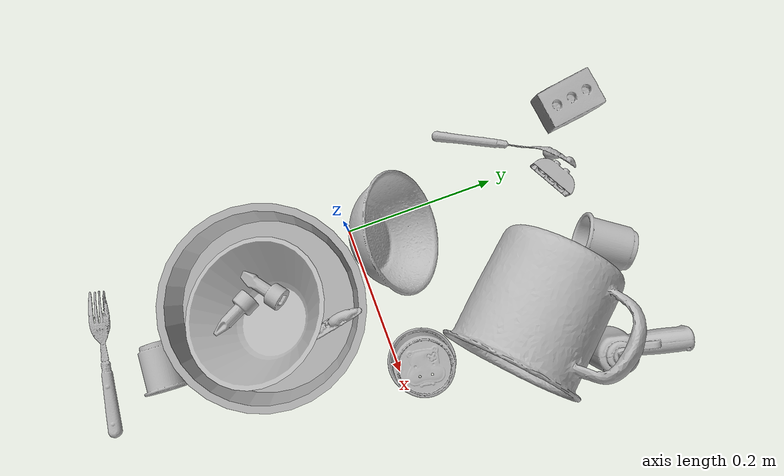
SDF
<sdf version="1.4">
  <world name="default">
    <light name="light1" type="point">
      <pose>0 0 1 0 0 0</pose>
      <diffuse>3 3 3 1</diffuse>
      <specular>3 3 3 1</specular>
    </light>
    <light name="light2" type="point">
      <pose>0 0.5 2 0 0 0</pose>
      <diffuse>1 1 1 1</diffuse>
      <specular>1 1 1 1</specular>
    </light>
    <light name="light3" type="point">
      <pose>0 0.5 2 0 0 0</pose>
      <diffuse>3 3 3 1</diffuse>
      <specular>3 3 3 1</specular>
    </light>
    <scene>
      <ambient>0.7 0.7 0.7</ambient>
    </scene>
    <model name="plate1">
      <link name="link_plate1">
        <collision name="default">
          <geometry>
            <mesh>
              <uri>model://pan_tefal/collision_meshes/collision.obj</uri>
              <scale>1.0 1.0 1.0</scale>
            </mesh>
          </geometry>
          <surface>
            <friction>
              <ode>
                <mu>0.5</mu>
                <mu2>0.5</mu2>
              </ode>
            </friction>
          <contact>
        <ode>
            <max_vel>0</max_vel>
            <min_depth>0.0001</min_depth>
            <kp>1e8</kp>
        </ode>
    </contact></surface>
        </collision>
        <visual name="default">
          <geometry>
            <mesh>
              <uri>model://pan_tefal/visual_meshes/visual.dae</uri>
              <scale>1.0 1.0 1.0</scale>
            </mesh>
          </geometry>
        </visual>
        <inertial>
          <mass>1.356081485748291</mass>
          <pose>-0.00018001878925133497 3.2792810088722035e-05 -0.008514934219419956 0.000819032333381865 -0.0003301471985614655 -0.33185384828338066</pose>
          <inertia>
            <ixx>0.009360965</ixx>
            <iyy>0.009421317</iyy>
            <izz>0.017231734</izz>
            <ixy>0</ixy>
            <ixz>0</ixz>
            <iyz>0</iyz>
          </inertia>
        </inertial>
      </link>
      <pose>0.05797726288437843 -0.13571830093860626 0.038049980998039246 -1.815935901970087e-06 -3.4419227883449926e-07 -1.0961578878169909</pose>
    </model>
    <model name="cup1">
      <link name="link_cup1">
        <collision name="default">
          <geometry>
            <mesh>
              <uri>model://mug/collision_meshes/collision.obj</uri>
              <scale>2.0 2.0 2.0</scale>
            </mesh>
          </geometry>
          <surface>
            <friction>
              <ode>
                <mu>0.5</mu>
                <mu2>0.5</mu2>
              </ode>
            </friction>
          <contact>
        <ode>
            <max_vel>0</max_vel>
            <min_depth>0.0001</min_depth>
            <kp>1e8</kp>
        </ode>
    </contact></surface>
        </collision>
        <visual name="default">
          <geometry>
            <mesh>
              <uri>model://mug/visual_meshes/visual.dae</uri>
              <scale>2.0 2.0 2.0</scale>
            </mesh>
          </geometry>
        </visual>
        <inertial>
          <mass>1.425228476524353</mass>
          <pose>0.019143342971801758 0.0016286519821733236 -0.021894657984375954 -0.12983169455958588 0.08737743422724535 0.05507285753370488</pose>
          <inertia>
            <ixx>0.005662833</ixx>
            <iyy>0.0063250507</iyy>
            <izz>0.0073150056</izz>
            <ixy>0</ixy>
            <ixz>0</ixz>
            <iyz>0</iyz>
          </inertia>
        </inertial>
      </link>
      <pose>0.18804103136062622 0.20158690214157104 0.10355532169342041 -1.46324186858892 0.6855797015070378 -2.330469369040726</pose>
    </model>
    <model name="silverware1">
      <link name="link_silverware1">
        <collision name="default">
          <geometry>
            <mesh>
              <uri>model://spoon/collision_meshes/collision.obj</uri>
              <scale>1.0 1.0 1.0</scale>
            </mesh>
          </geometry>
          <surface>
            <friction>
              <ode>
                <mu>0.5</mu>
                <mu2>0.5</mu2>
              </ode>
            </friction>
          <contact>
        <ode>
            <max_vel>0</max_vel>
            <min_depth>0.0001</min_depth>
            <kp>1e8</kp>
        </ode>
    </contact></surface>
        </collision>
        <visual name="default">
          <geometry>
            <mesh>
              <uri>model://spoon/visual_meshes/visual.dae</uri>
              <scale>1.0 1.0 1.0</scale>
            </mesh>
          </geometry>
        </visual>
        <inertial>
          <mass>0.031423501670360565</mass>
          <pose>-0.005526318680495024 -0.0016034176805987954 -0.000727165665011853 0.035217765619004186 -0.03906586018731898 0.006150610672177042</pose>
          <inertia>
            <ixx>1.7478262e-06</ixx>
            <iyy>0.0001195654</iyy>
            <izz>0.000120427336</izz>
            <ixy>0</ixy>
            <ixz>0</ixz>
            <iyz>0</iyz>
          </inertia>
        </inertial>
      </link>
      <pose>-0.03472175821661949 0.23376286029815674 0.01775543764233589 1.8116189498970898 -0.07323591437370909 1.0873149706880034</pose>
    </model>
    <model name="silverware2">
      <link name="link_silverware2">
        <collision name="default">
          <geometry>
            <mesh>
              <uri>model://fork/collision_meshes/collision.obj</uri>
              <scale>1.0 1.0 1.0</scale>
            </mesh>
          </geometry>
          <surface>
            <friction>
              <ode>
                <mu>0.5</mu>
                <mu2>0.5</mu2>
              </ode>
            </friction>
          <contact>
        <ode>
            <max_vel>0</max_vel>
            <min_depth>0.0001</min_depth>
            <kp>1e8</kp>
        </ode>
    </contact></surface>
        </collision>
        <visual name="default">
          <geometry>
            <mesh>
              <uri>model://fork/visual_meshes/visual.dae</uri>
              <scale>1.0 1.0 1.0</scale>
            </mesh>
          </geometry>
        </visual>
        <inertial>
          <mass>0.02368462271988392</mass>
          <pose>-0.02957003191113472 0.00046588238910771906 0.00032188621116802096 -0.013550757689210725 -0.010977831639922976 0.014453892765665301</pose>
          <inertia>
            <ixx>8.3028004e-07</ixx>
            <iyy>6.183376e-05</iyy>
            <izz>6.220513e-05</izz>
            <ixy>0</ixy>
            <ixz>0</ixz>
            <iyz>0</iyz>
          </inertia>
        </inertial>
      </link>
      <pose>0.05668359994888306 -0.3657918870449066 0.007446601055562496 -3.0634995603240314 0.002835968791694201 2.954797428260109</pose>
    </model>
    <model name="silverware3">
      <link name="link_silverware3">
        <collision name="default">
          <geometry>
            <mesh>
              <uri>model://knife/collision_meshes/collision.obj</uri>
              <scale>1.0 1.0 1.0</scale>
            </mesh>
          </geometry>
          <surface>
            <friction>
              <ode>
                <mu>0.5</mu>
                <mu2>0.5</mu2>
              </ode>
            </friction>
          <contact>
        <ode>
            <max_vel>0</max_vel>
            <min_depth>0.0001</min_depth>
            <kp>1e8</kp>
        </ode>
    </contact></surface>
        </collision>
        <visual name="default">
          <geometry>
            <mesh>
              <uri>model://knife/visual_meshes/visual.dae</uri>
              <scale>1.0 1.0 1.0</scale>
            </mesh>
          </geometry>
        </visual>
        <inertial>
          <mass>0.023530498147010803</mass>
          <pose>-0.023785250261425972 0.0015275124460458755 5.062020863988437e-05 0.07305757972864607 0.01724841573343299 -0.007409825279630946</pose>
          <inertia>
            <ixx>6.678909e-07</ixx>
            <iyy>9.040038e-05</iyy>
            <izz>9.0615475e-05</izz>
            <ixy>0</ixy>
            <ixz>0</ixz>
            <iyz>0</iyz>
          </inertia>
        </inertial>
      </link>
      <pose>0.11870963871479034 -0.11801904439926147 0.04582400619983673 2.603979397325431 -0.31365880083863884 1.764489744866924</pose>
    </model>
    <model name="cup3">
      <link name="link_cup3">
        <collision name="default">
          <geometry>
            <mesh>
              <uri>model://b_cups/collision_meshes/collision.obj</uri>
              <scale>1.0 1.0 1.0</scale>
            </mesh>
          </geometry>
          <surface>
            <friction>
              <ode>
                <mu>0.5</mu>
                <mu2>0.5</mu2>
              </ode>
            </friction>
          <contact>
        <ode>
            <max_vel>0</max_vel>
            <min_depth>0.0001</min_depth>
            <kp>1e8</kp>
        </ode>
    </contact></surface>
        </collision>
        <visual name="default">
          <geometry>
            <mesh>
              <uri>model://b_cups/visual_meshes/visual.dae</uri>
              <scale>1.0 1.0 1.0</scale>
            </mesh>
          </geometry>
        </visual>
        <inertial>
          <mass>0.033049143850803375</mass>
          <pose>0.0005182002205401659 0.001805859967134893 -0.0013381808530539274 0.11356265792291019 0.03872585472979472 -0.3457023826899558</pose>
          <inertia>
            <ixx>2.1632983e-05</ixx>
            <iyy>2.1222275e-05</iyy>
            <izz>1.8203747e-05</izz>
            <ixy>0</ixy>
            <ixz>0</ixz>
            <iyz>0</iyz>
          </inertia>
        </inertial>
      </link>
      <pose>0.08507277816534042 -0.29067760705947876 0.027723899111151695 -1.4073591592912982 0.9737589609919403 -1.4783872803714515</pose>
    </model>
    <model name="cup4">
      <link name="link_cup4">
        <collision name="default">
          <geometry>
            <mesh>
              <uri>model://h_cups/collision_meshes/collision.obj</uri>
              <scale>1.0 1.0 1.0</scale>
            </mesh>
          </geometry>
          <surface>
            <friction>
              <ode>
                <mu>0.5</mu>
                <mu2>0.5</mu2>
              </ode>
            </friction>
          <contact>
        <ode>
            <max_vel>0</max_vel>
            <min_depth>0.0001</min_depth>
            <kp>1e8</kp>
        </ode>
    </contact></surface>
        </collision>
        <visual name="default">
          <geometry>
            <mesh>
              <uri>model://h_cups/visual_meshes/visual.dae</uri>
              <scale>1.0 1.0 1.0</scale>
            </mesh>
          </geometry>
        </visual>
        <inertial>
          <mass>0.11347958445549011</mass>
          <pose>-2.7030910132452846e-05 0.00023018615320324898 -0.0018405403243377805 -0.02436217983877791 0.06545222634893223 0.12885210457354207</pose>
          <inertia>
            <ixx>0.0001465536</ixx>
            <iyy>0.00014480477</iyy>
            <izz>0.00015369456</izz>
            <ixy>0</ixy>
            <ixz>0</ixz>
            <iyz>0</iyz>
          </inertia>
        </inertial>
      </link>
      <pose>0.19749468564987183 0.03220425546169281 0.03752999007701874 3.1415818757149556 9.01194941589332e-06 3.063480097845516</pose>
    </model>
    <model name="cup5">
      <link name="link_cup5">
        <collision name="default">
          <geometry>
            <mesh>
              <uri>model://d_cups/collision_meshes/collision.obj</uri>
              <scale>1.0 1.0 1.0</scale>
            </mesh>
          </geometry>
          <surface>
            <friction>
              <ode>
                <mu>0.5</mu>
                <mu2>0.5</mu2>
              </ode>
            </friction>
          <contact>
        <ode>
            <max_vel>0</max_vel>
            <min_depth>0.0001</min_depth>
            <kp>1e8</kp>
        </ode>
    </contact></surface>
        </collision>
        <visual name="default">
          <geometry>
            <mesh>
              <uri>model://d_cups/visual_meshes/visual.dae</uri>
              <scale>1.0 1.0 1.0</scale>
            </mesh>
          </geometry>
        </visual>
        <inertial>
          <mass>0.039110079407691956</mass>
          <pose>0.0008068050956353545 0.0019117392366752028 -0.0022666517179459333 0.24011224021147495 -0.247107611945545 0.594295747375292</pose>
          <inertia>
            <ixx>3.2744327e-05</ixx>
            <iyy>3.2649565e-05</iyy>
            <izz>2.9639183e-05</izz>
            <ixy>0</ixy>
            <ixz>0</ixz>
            <iyz>0</iyz>
          </inertia>
        </inertial>
      </link>
      <pose>0.13153503835201263 0.3094854950904846 0.03242270275950432 -1.4778892584119088 -0.005393963008882366 2.556009567643224</pose>
    </model>
    <model name="bowl1">
      <link name="link_bowl1">
        <collision name="default">
          <geometry>
            <mesh>
              <uri>model://bowl/collision_meshes/collision.obj</uri>
              <scale>1.0 1.0 1.0</scale>
            </mesh>
          </geometry>
          <surface>
            <friction>
              <ode>
                <mu>0.5</mu>
                <mu2>0.5</mu2>
              </ode>
            </friction>
          <contact>
        <ode>
            <max_vel>0</max_vel>
            <min_depth>0.0001</min_depth>
            <kp>1e8</kp>
        </ode>
    </contact></surface>
        </collision>
        <visual name="default">
          <geometry>
            <mesh>
              <uri>model://bowl/visual_meshes/visual.dae</uri>
              <scale>1.0 1.0 1.0</scale>
            </mesh>
          </geometry>
        </visual>
        <inertial>
          <mass>0.04740063101053238</mass>
          <pose>0.00020445372501853853 -0.001030205050483346 -0.000804265437182039 -0.015764138065403298 0.014546740803255881 0.7140373892972721</pose>
          <inertia>
            <ixx>0.00010888298</ixx>
            <iyy>0.000106450105</iyy>
            <izz>0.00018317858</izz>
            <ixy>0</ixy>
            <ixz>0</ixz>
            <iyz>0</iyz>
          </inertia>
        </inertial>
      </link>
      <pose>0.024608030915260315 0.043985217809677124 0.055201590061187744 -0.24438112640132484 0.9083535425610604 1.0731317722787033</pose>
    </model>
    <model name="bowl2">
      <link name="link_bowl2">
        <collision name="default">
          <geometry>
            <mesh>
              <uri>model://bowl_a/collision_meshes/collision.obj</uri>
              <scale>1.0 1.0 1.0</scale>
            </mesh>
          </geometry>
          <surface>
            <friction>
              <ode>
                <mu>0.5</mu>
                <mu2>0.5</mu2>
              </ode>
            </friction>
          <contact>
        <ode>
            <max_vel>0</max_vel>
            <min_depth>0.0001</min_depth>
            <kp>1e8</kp>
        </ode>
    </contact></surface>
        </collision>
        <visual name="default">
          <geometry>
            <mesh>
              <uri>model://bowl_a/visual_meshes/visual.dae</uri>
              <scale>1.0 1.0 1.0</scale>
            </mesh>
          </geometry>
        </visual>
        <inertial>
          <mass>0.4596928358078003</mass>
          <pose>0.0002786756376735866 4.731212538899854e-05 -0.001376529224216938 -0.0009805332698969178 -0.0010938264579112213 -0.1912378887702168</pose>
          <inertia>
            <ixx>0.0013087663</ixx>
            <iyy>0.0013168014</iyy>
            <izz>0.002327691</izz>
            <ixy>0</ixy>
            <ixz>0</ixz>
            <iyz>0</iyz>
          </inertia>
        </inertial>
      </link>
      <pose>0.06941289454698563 -0.138380765914917 0.05868539214134216 0.376646552481141 0.2606460550911428 -1.5275515416724355</pose>
    </model>
    <model name="toy1">
      <link name="link_toy1">
        <collision name="default">
          <geometry>
            <mesh>
              <uri>model://d_toy_airplane/collision_meshes/collision.obj</uri>
              <scale>1.0 1.0 1.0</scale>
            </mesh>
          </geometry>
          <surface>
            <friction>
              <ode>
                <mu>0.5</mu>
                <mu2>0.5</mu2>
              </ode>
            </friction>
          <contact>
        <ode>
            <max_vel>0</max_vel>
            <min_depth>0.0001</min_depth>
            <kp>1e8</kp>
        </ode>
    </contact></surface>
        </collision>
        <visual name="default">
          <geometry>
            <mesh>
              <uri>model://d_toy_airplane/visual_meshes/visual.dae</uri>
              <scale>1.0 1.0 1.0</scale>
            </mesh>
          </geometry>
        </visual>
        <inertial>
          <mass>0.017302583903074265</mass>
          <pose>9.410295751877129e-05 -5.809326466987841e-05 -0.011728093028068542 0.00026573120399734447 0.004679044314999465 0.5192011935173154</pose>
          <inertia>
            <ixx>5.1869783e-06</ixx>
            <iyy>5.190892e-06</iyy>
            <izz>1.5659823e-06</izz>
            <ixy>0</ixy>
            <ixz>0</ixz>
            <iyz>0</iyz>
          </inertia>
        </inertial>
      </link>
      <pose>0.054385945200920105 -0.17872335016727448 0.04034316912293434 1.3463041984167952 -0.06055633248952831 0.49739888304858654</pose>
    </model>
    <model name="toy2">
      <link name="link_toy2">
        <collision name="default">
          <geometry>
            <mesh>
              <uri>model://b_toy_airplane/collision_meshes/collision.obj</uri>
              <scale>1.0 1.0 1.0</scale>
            </mesh>
          </geometry>
          <surface>
            <friction>
              <ode>
                <mu>0.5</mu>
                <mu2>0.5</mu2>
              </ode>
            </friction>
          <contact>
        <ode>
            <max_vel>0</max_vel>
            <min_depth>0.0001</min_depth>
            <kp>1e8</kp>
        </ode>
    </contact></surface>
        </collision>
        <visual name="default">
          <geometry>
            <mesh>
              <uri>model://b_toy_airplane/visual_meshes/visual.dae</uri>
              <scale>1.0 1.0 1.0</scale>
            </mesh>
          </geometry>
        </visual>
        <inertial>
          <mass>0.45341360569000244</mass>
          <pose>0.00508136535063386 0.004015584941953421 0.00954306498169899 -0.04001809497736226 -0.04022180630889015 -0.560150289687741</pose>
          <inertia>
            <ixx>0.0008417707</ixx>
            <iyy>0.00033646397</iyy>
            <izz>0.0010472467</izz>
            <ixy>0</ixy>
            <ixz>0</ixz>
            <iyz>0</iyz>
          </inertia>
        </inertial>
      </link>
      <pose>0.25568222999572754 0.28959551453590393 0.0436893105506897 2.913786071739391 -1.5441745172016335 0.051575485130729466</pose>
    </model>
    <model name="toy3">
      <link name="link_toy3">
        <collision name="default">
          <geometry>
            <mesh>
              <uri>model://a_lego_duplo/collision_meshes/collision.obj</uri>
              <scale>1.0 1.0 1.0</scale>
            </mesh>
          </geometry>
          <surface>
            <friction>
              <ode>
                <mu>0.5</mu>
                <mu2>0.5</mu2>
              </ode>
            </friction>
          <contact>
        <ode>
            <max_vel>0</max_vel>
            <min_depth>0.0001</min_depth>
            <kp>1e8</kp>
        </ode>
    </contact></surface>
        </collision>
        <visual name="default">
          <geometry>
            <mesh>
              <uri>model://a_lego_duplo/visual_meshes/visual.dae</uri>
              <scale>1.0 1.0 1.0</scale>
            </mesh>
          </geometry>
        </visual>
        <inertial>
          <mass>0.019445955753326416</mass>
          <pose>-0.00011337668547639623 0.0001851754350354895 0.00036926064058206975 -0.014116968054253443 -0.00012565964371363686 6.142473690124929e-05</pose>
          <inertia>
            <ixx>2.4931269e-06</ixx>
            <iyy>5.58515e-06</iyy>
            <izz>6.9184516e-06</izz>
            <ixy>0</ixy>
            <ixz>0</ixz>
            <iyz>0</iyz>
          </inertia>
        </inertial>
      </link>
      <pose>0.021849479526281357 0.2847248911857605 0.016247518360614777 -1.5707268102493974 2.2501480906454938e-05 0.5214320195158145</pose>
    </model>
    <model name="toy4">
      <link name="link_toy4">
        <collision name="default">
          <geometry>
            <mesh>
              <uri>model://foam_brick/collision_meshes/collision.obj</uri>
              <scale>1.0 1.0 1.0</scale>
            </mesh>
          </geometry>
          <surface>
            <friction>
              <ode>
                <mu>0.5</mu>
                <mu2>0.5</mu2>
              </ode>
            </friction>
          <contact>
        <ode>
            <max_vel>0</max_vel>
            <min_depth>0.0001</min_depth>
            <kp>1e8</kp>
        </ode>
    </contact></surface>
        </collision>
        <visual name="default">
          <geometry>
            <mesh>
              <uri>model://foam_brick/visual_meshes/visual.dae</uri>
              <scale>1.0 1.0 1.0</scale>
            </mesh>
          </geometry>
        </visual>
        <inertial>
          <mass>0.18476375937461853</mass>
          <pose>-0.00025224717683158815 0.0003458433784544468 -0.00025321010616607964 -0.2940193708875024 0.01727444338713918 -0.0007449870082442464</pose>
          <inertia>
            <ixx>8.070827e-05</ixx>
            <iyy>0.00012885487</iyy>
            <izz>0.00013049248</izz>
            <ixy>0</ixy>
            <ixz>0</ixz>
            <iyz>0</iyz>
          </inertia>
        </inertial>
      </link>
      <pose>-0.06259636580944061 0.3306315839290619 0.025917526334524155 0.013817220478121011 0.004276889841678726 1.712177131697423</pose>
    </model>
    <model name="toy5">
      <link name="link_toy5">
        <collision name="default">
          <geometry>
            <mesh>
              <uri>model://e_toy_airplane/collision_meshes/collision.obj</uri>
              <scale>1.0 1.0 1.0</scale>
            </mesh>
          </geometry>
          <surface>
            <friction>
              <ode>
                <mu>0.5</mu>
                <mu2>0.5</mu2>
              </ode>
            </friction>
          <contact>
        <ode>
            <max_vel>0</max_vel>
            <min_depth>0.0001</min_depth>
            <kp>1e8</kp>
        </ode>
    </contact></surface>
        </collision>
        <visual name="default">
          <geometry>
            <mesh>
              <uri>model://e_toy_airplane/visual_meshes/visual.dae</uri>
              <scale>1.0 1.0 1.0</scale>
            </mesh>
          </geometry>
        </visual>
        <inertial>
          <mass>0.01085815578699112</mass>
          <pose>0.00011740455374820158 -2.248299279017374e-05 -0.011187206953763962 0.005518501127689679 0.009228289957601814 0.15041514141603637</pose>
          <inertia>
            <ixx>3.3140323e-06</ixx>
            <iyy>3.2801318e-06</iyy>
            <izz>9.959974e-07</izz>
            <ixy>0</ixy>
            <ixz>0</ixz>
            <iyz>0</iyz>
          </inertia>
        </inertial>
      </link>
      <pose>0.03229790925979614 -0.13066233694553375 0.04272475093603134 -1.9891411358427253 1.0274943248355652 1.8797841044181012</pose>
    </model>
  <physics type="ode">
      <max_contacts>50</max_contacts>
      <ode>
        <solver>
          <type>quick</type>
          <iters>75</iters>
        </solver>
        <constraints>
          <contact_max_correcting_vel>0</contact_max_correcting_vel>
          <contact_surface_layer>0</contact_surface_layer>
        </constraints>
      </ode>
    </physics></world>
</sdf>
